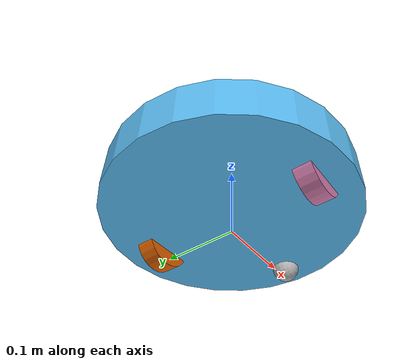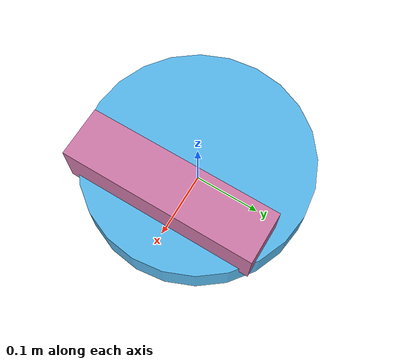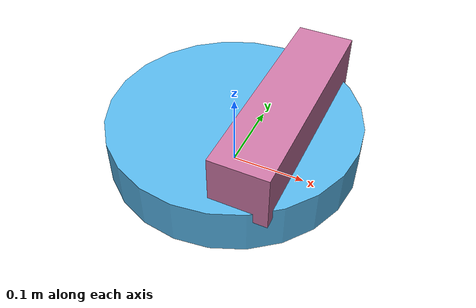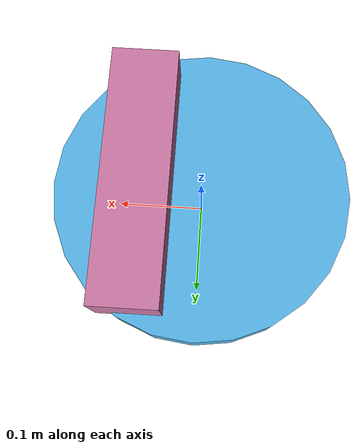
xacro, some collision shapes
<?xml version="1.0" ?>
<robot name="create_2"
  xmlns:xacro="http://ros.org/wiki/xacro">
  <xacro:include filename="$(find custom_description)/description/create/urdf/create_base.urdf.xacro" />
  <xacro:include filename="$(find custom_description)/description/create/urdf/create_2_gazebo.urdf.xacro" />
  <create_base wheel_separation="0.235" base_diameter="0.3485">
    <mesh filename="package://custom_description/description/create/meshes/create_2.dae" />
  </create_base>
  <range_sensor name="right_wall_sensor" parent="base_link" ros_topic="/right_wall_sensor_range" update_rate="10" min_range="0.0160" max_range="0.1" field_of_view="${2*3.1415926/180}" ray_count="1" type="infrared">
    <origin xyz="0.09 -0.120 0.042" rpy="0 0 -1.0" />
  </range_sensor>
  <range_sensor name="left_wall_sensor" parent="base_link" ros_topic="/left_wall_sensor_range" update_rate="10" min_range="0.0160" max_range="0.1" field_of_view="${2*3.1415926/180}" ray_count="1" type="infrared">
    <origin xyz="0.09 0.120 0.042" rpy="0 0 1.0" />
  </range_sensor>
  <range_sensor name="front_sonar" parent="base_link" ros_topic="/front_range" update_rate="10" min_range="0.02" max_range="0.25" field_of_view="${80*3.1415926/180}" ray_count="1">
    <origin xyz="0.15 0.0 0.05" rpy="0 0 0" />
  </range_sensor>
  <sensor_kinect parent="base_link">
    <origin xyz="0.10 -0.0125 0.1" rpy="0 0 0" />
  </sensor_kinect>
</robot>

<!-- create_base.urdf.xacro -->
<robot name="create_2"
  xmlns:xacro="http://ros.org/wiki/xacro">
  <xacro:include filename="$(find custom_description)/description/create/urdf/create_base_gazebo.urdf.xacro" />
  <xacro:include filename="$(find custom_description)/description/range_sensor.urdf.xacro" />
  <xacro:include filename="$(find custom_description)/description/kinect.urdf.xacro" />
  <xacro:property name="PI" value="3.1415926535897931" />
  <xacro:macro name="create_wheel" params="prefix y_offset wheel_radius wheel_width">
    <link name="${prefix}_wheel_link">
      <inertial>
        <origin xyz="0 0 0" />
        <mass value="0.01" />
        <inertia ixx="0.001" ixy="0.0" ixz="0.0" iyy="0.001" iyz="0.0" izz="0.001" />
      </inertial>
      <visual>
        <origin xyz="0 0 0" rpy="0 ${PI/2} ${PI/2}" />
        <geometry>
          <cylinder radius="${wheel_radius}" length="${wheel_width}" />
        </geometry>
      </visual>
      <collision>
        <origin xyz="0 0 0" rpy="0 ${PI/2} ${PI/2}" />
        <geometry>
          <cylinder radius="${wheel_radius}" length="${wheel_width}" />
        </geometry>
      </collision>
    </link>
    <joint name="${prefix}_wheel_joint" type="continuous">
      <origin xyz="0 ${y_offset} 0.015" rpy="0 0 0" />
      <parent link="base_link" />
      <child link="${prefix}_wheel_link" />
      <axis xyz="0 1 0" />
    </joint>
  </xacro:macro>
  <xacro:macro name="create_base" params="diffdrive_update_rate:=40 wheel_separation wheel_radius:=0.036 wheel_width:=0.024 wheel_torque:=1.0 wheel_accel:=1.8 mass_kg:=3.5 base_diameter *mesh">
    <link name="base_footprint">
      <visual>
        <origin xyz="0 0 0" rpy="0 0 0" />
        <geometry>
          <box size="0.001 0.001 0.001" />
        </geometry>
        <material name="Green" />
      </visual>
      <collision>
        <origin xyz="0 0 0.017" rpy="0 0 0" />
        <geometry>
          <box size="0.001 0.001 0.001" />
        </geometry>
      </collision>
    </link>
    <link name="base_link">
      <inertial>
        <origin xyz="0.01 0 0" />
				<mass value="2.4" />
        <inertia ixx="0.019995" ixy="0.0" ixz="0.0" iyy="0.019995" iyz="0.0" izz="0.03675" />
      </inertial>
      <visual>
        <origin xyz=" 0 0 0.0308" rpy="0 0 0" />
        <geometry>
          <xacro:insert_block name="mesh" />
        </geometry>
      </visual>
      <collision>
        <origin xyz="0.0 0.0 0.0308" rpy="0 0 0" />
        <geometry>
          <cylinder length="0.0611632" radius="0.16495" />
        </geometry>
      </collision>
    </link>
    <link name="left_cliff_sensor_link">
      <inertial>
        <mass value="0.01" />
        <origin xyz="0 0 0" />
        <inertia ixx="0.001" ixy="0.0" ixz="0.0" iyy="0.001" iyz="0.0" izz="0.001" />
      </inertial>
    </link>
    <link name="right_cliff_sensor_link">
      <inertial>
        <mass value="0.01" />
        <origin xyz="0 0 0" />
        <inertia ixx="0.001" ixy="0.0" ixz="0.0" iyy="0.001" iyz="0.0" izz="0.001" />
      </inertial>
    </link>
    <link name="front_cliff_sensor_link">
      <inertial>
        <mass value="0.01" />
        <origin xyz="0 0 0" />
        <inertia ixx="0.001" ixy="0.0" ixz="0.0" iyy="0.001" iyz="0.0" izz="0.001" />
      </inertial>
    </link>
    <joint name="base_footprint_joint" type="fixed">
      <origin xyz="0 0 0.017" rpy="0 0 0" />
      <parent link="base_footprint" />
      <child link="base_link" />
    </joint>
    <joint name="base_left_cliff_sensor_joint" type="fixed">
      <origin xyz="0.07 0.14 0.01" rpy="0 ${PI/2} 0" />
      <parent link="base_link" />
      <child link="left_cliff_sensor_link" />
    </joint>
    <joint name="base_right_cliff_sensor_joint" type="fixed">
      <origin xyz="0.07 -0.14 0.01" rpy="0 ${PI/2} 0" />
      <parent link="base_link" />
      <child link="right_cliff_sensor_link" />
    </joint>
    <joint name="base_front_cliff_sensor_joint" type="fixed">
      <origin xyz="0.15 0.0 0.01" rpy="0 ${PI/2} 0" />
      <parent link="base_link" />
      <child link="front_cliff_sensor_link" />
    </joint>
    <xacro:create_wheel prefix="left" y_offset="${wheel_separation / 2}" wheel_radius="0.0358" wheel_width="${wheel_width}"/>
    <xacro:create_wheel prefix="right" y_offset="${wheel_separation / -2}" wheel_radius="${wheel_radius}" wheel_width="${wheel_width}"/>
    <link name="front_wheel_link">
      <inertial>
        <origin xyz="0 0 0" />
        <mass value="0.01" />
        <inertia ixx="0.001" ixy="0.0" ixz="0.0" iyy="0.001" iyz="0.0" izz="0.001" />
      </inertial>
      <visual>
        <origin xyz="0 0 0" rpy="0 ${PI/2} ${PI/2}" />
        <geometry>
          <sphere radius="0.018" />
        </geometry>
      </visual>
      <collision>
        <origin xyz="0 0 0" rpy="0 ${PI/2} ${PI/2}" />
        <geometry>
          <sphere radius="0.018" />
        </geometry>
      </collision>
    </link>
    <!-- fixed because there's no transmission -->
    <joint name="front_castor_joint" type="fixed">
      <origin xyz="0.13 0 0.0" rpy="0 0 0" />
      <parent link="base_link" />
      <child link="front_wheel_link" />
      <axis xyz="0 1 0" />
    </joint>
    <joint name="gyro_joint" type="fixed">
      <axis xyz="0 1 0" />
      <origin xyz="0 0 0.04" rpy="0 0 0" />
      <parent link="base_link" />
      <child link="gyro_link" />
    </joint>
    <link name="gyro_link">
      <inertial>
        <mass value="0.001" />
        <origin xyz="0 0 0" rpy="0 0 0" />
        <inertia ixx="0.0001" ixy="0" ixz="0" iyy="0.000001" iyz="0" izz="0.0001" />
      </inertial>
    </link>
    <!-- Simulation sensors -->
    <sim_create_base/>

  </xacro:macro>
</robot>

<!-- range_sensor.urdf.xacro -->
<robot xmlns:xacro="http://www.ros.org/wiki/xacro">
  <xacro:macro name="range_sensor" params="name parent *origin ros_topic update_rate min_range max_range field_of_view ray_count type:=ultrasound">
    <joint name="${name}_joint" type="fixed">
      <xacro:insert_block name="origin" />
      <parent link="${parent}"/>
      <child link="${name}_link"/>
    </joint>

    <link name="${name}_link">
      <inertial>
        <mass value="0.001" />
        <origin xyz="0 0 0" rpy="0 0 0" />
        <inertia ixx="0.000000017" ixy="0" ixz="0" iyy="0.000000017" iyz="0" izz="0.000000017" />
      </inertial>
      <visual>
        <origin xyz="0 0 0" rpy="0 0 0" />
        <geometry>
          <box size="0.01 0.01 0.01" />
        </geometry>
      </visual>
      <collision>
        <origin xyz="0 0 0" rpy="0 0 0" />
        <geometry>
          <box size="0.01 0.01 0.01" />
        </geometry>
      </collision>
    </link>

    <gazebo reference="${name}_link">
      <sensor type="ray" name="${name}">
        <always_on>true</always_on>
        <update_rate>${update_rate}</update_rate>
        <pose>0 0 0 0 0 0</pose>
        <visualize>false</visualize>
        <ray>
          <scan>
            <horizontal>
              <samples>${ray_count}</samples>
              <resolution>1</resolution>
              <min_angle>-${field_of_view/2}</min_angle>
              <max_angle> ${field_of_view/2}</max_angle>
            </horizontal>
          </scan>
          <range>
            <min>${min_range}</min>
            <max>${max_range}</max>
            <resolution>0.01</resolution>
          </range>
        </ray>

        <plugin name="gazebo_ros_${name}_controller" filename="libgazebo_ros_range.so">
          <fov>${field_of_view}</fov>
          <updateRate>${update_rate}</updateRate>
          <gaussianNoise>0.01</gaussianNoise>
          <topicName>${ros_topic}</topicName>
          <frameName>${name}_link</frameName>
          <radiation>${type}</radiation>
        </plugin>
      </sensor>
    </gazebo>
  </xacro:macro>
</robot>

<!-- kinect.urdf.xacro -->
<robot
  xmlns:xacro="http://ros.org/wiki/xacro">
  <xacro:include filename="$(find custom_description)/description/common_properties.urdf.xacro" />
  <xacro:property name="kinect_cam_py" value="-0.0125"/>
  <!-- Parameterised in part by the values in turtlebot_properties.urdf.xacro -->
  <xacro:macro name="sensor_kinect" params="parent *origin">
    <joint name="camera_rgb_joint" type="fixed">
      <xacro:insert_block name="origin" />
      <parent link="${parent}"/>
      <child link="camera_rgb_frame" />
    </joint>
    <link name="camera_rgb_frame"/>
    <joint name="camera_rgb_optical_joint" type="fixed">
      <origin xyz="0 0 0" rpy="${-M_PI/2} 0 ${-M_PI/2}" />
      <parent link="camera_rgb_frame" />
      <child link="camera_rgb_optical_frame" />
    </joint>
    <link name="camera_rgb_optical_frame"/>
    <joint name="camera_joint" type="fixed">
      <origin xyz="-0.031 ${-kinect_cam_py} -0.016" rpy="0 0 0"/>
      <parent link="camera_rgb_frame"/>
      <child link="camera_link"/>
    </joint>
    <link name="camera_link">
      <visual>
        <origin xyz="0 0 0" rpy="0 0 ${M_PI/2}"/>
        <geometry>
          <mesh filename="package://custom_description/description/meshes/sensors/kinect.dae"/>
        </geometry>
      </visual>
      <collision>
        <origin xyz="0.0 0.0 0.0" rpy="0 0 0"/>
        <geometry>
          <box size="0.07271 0.27794 0.073"/>
        </geometry>
      </collision>
      <inertial>
        <mass value="0.564" />
        <origin xyz="0 0 0" />
        <inertia ixx="0.003881243" ixy="0.0" ixz="0.0" iyy="0.000498940" iyz="0.0" izz="0.003879257" />
      </inertial>
    </link>
    <joint name="camera_depth_joint" type="fixed">
      <origin xyz="0 ${2 * -kinect_cam_py} 0" rpy="0 0 0" />
      <parent link="camera_rgb_frame" />
      <child link="camera_depth_frame" />
    </joint>
    <link name="camera_depth_frame"/>
    <joint name="camera_depth_optical_joint" type="fixed">
      <origin xyz="0 0 0" rpy="${-M_PI/2} 0 ${-M_PI/2}" />
      <parent link="camera_depth_frame" />
      <child link="camera_depth_optical_frame" />
    </joint>
    <link name="camera_depth_optical_frame"/>
    <!-- Kinect sensor for simulation -->
    <gazebo reference="camera_link">
      <sensor type="depth" name="camera">
        <always_on>true</always_on>
        <update_rate>20.0</update_rate>
        <camera>
          <horizontal_fov>${60.0*M_PI/180.0}</horizontal_fov>
          <image>
            <format>B8G8R8</format>
            <width>640</width>
            <height>480</height>
          </image>
          <clip>
            <near>0.05</near>
            <far>8.0</far>
          </clip>
        </camera>
        <plugin name="kinect_camera_controller" filename="libgazebo_ros_openni_kinect.so">
          <cameraName>camera</cameraName>
          <alwaysOn>true</alwaysOn>
          <updateRate>10</updateRate>
          <imageTopicName>rgb/image_raw</imageTopicName>
          <depthImageTopicName>depth/image_raw</depthImageTopicName>
          <pointCloudTopicName>depth/points</pointCloudTopicName>
          <cameraInfoTopicName>rgb/camera_info</cameraInfoTopicName>
          <depthImageCameraInfoTopicName>depth/camera_info</depthImageCameraInfoTopicName>
          <frameName>camera_depth_optical_frame</frameName>
          <baseline>0.1</baseline>
          <distortion_k1>0.0</distortion_k1>
          <distortion_k2>0.0</distortion_k2>
          <distortion_k3>0.0</distortion_k3>
          <distortion_t1>0.0</distortion_t1>
          <distortion_t2>0.0</distortion_t2>
          <pointCloudCutoff>0.4</pointCloudCutoff>
        </plugin>
      </sensor>
    </gazebo>
  </xacro:macro>
</robot>
